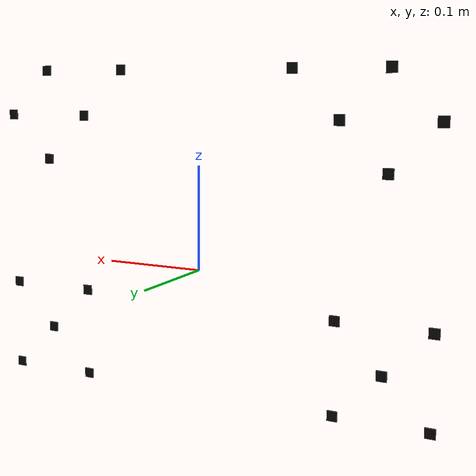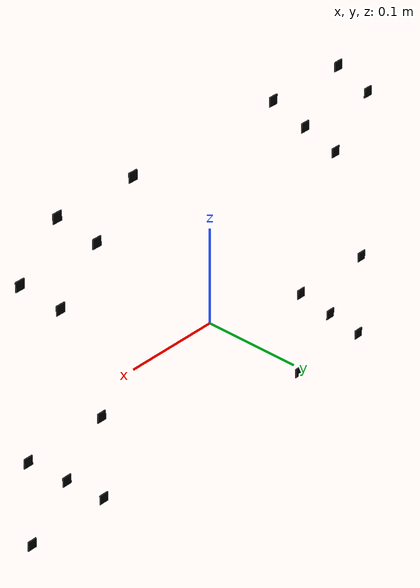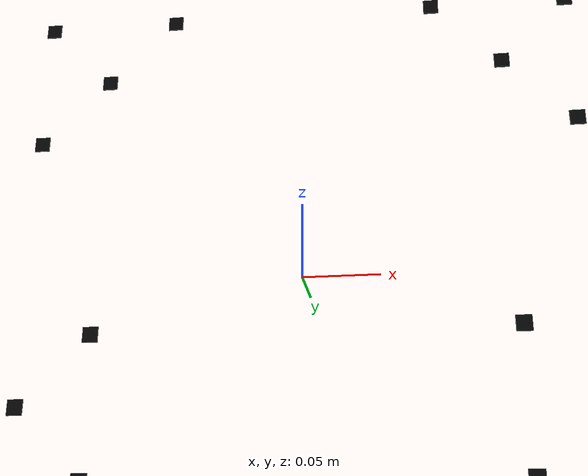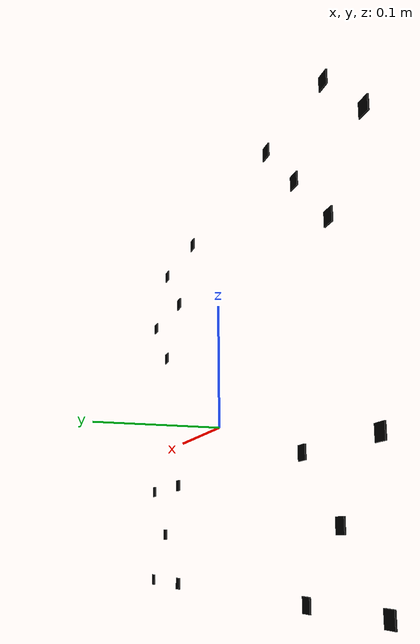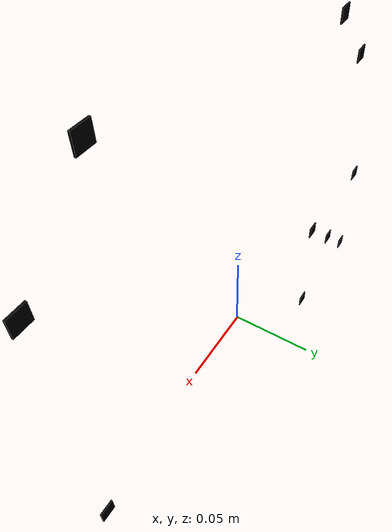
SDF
<?xml version="1.0" ?>
<sdf version="1.6">
  <model name="bolt_model">
    <link name="link">
      <pose>-0.230 0.0 0.280 3.141592 0 0</pose>
      <inertial>
        <mass>1000.0</mass>
        <inertia>
          <ixx>0.083</ixx>
          <ixy>0.0</ixy>
          <ixz>0.0</ixz>
          <iyy>0.083</iyy>
          <iyz>0.0</iyz>
          <izz>0.083</izz>
        </inertia>
      </inertial>
      <collision name="collision">
        <geometry>
          <mesh>
            <uri>model://bolt_model/meshes/bolt_simplified_large.stl</uri>
            <!-- On 600 mm x 450 mm plate-->
            <scale>0.001 0.001 0.001</scale>
          </mesh>
        </geometry>
      </collision>
      <visual name="visual">
        <geometry>
          <mesh>
            <uri>model://bolt_model/meshes/bolt_simplified_large.stl</uri>
            <!-- On 600 mm x 450 mm plate -->
            <scale>0.001 0.001 0.001</scale>
          </mesh>
        </geometry>
        <material> <!-- bright material -->
          <ambient>0 0 0 1</ambient>
          <diffuse>0 0 0 1</diffuse>
          <specular>0 0 0 0</specular>
          <emissive>1.0 0.2 0.2 1</emissive>
        </material>
      </visual>
    </link>
  </model>
</sdf>
